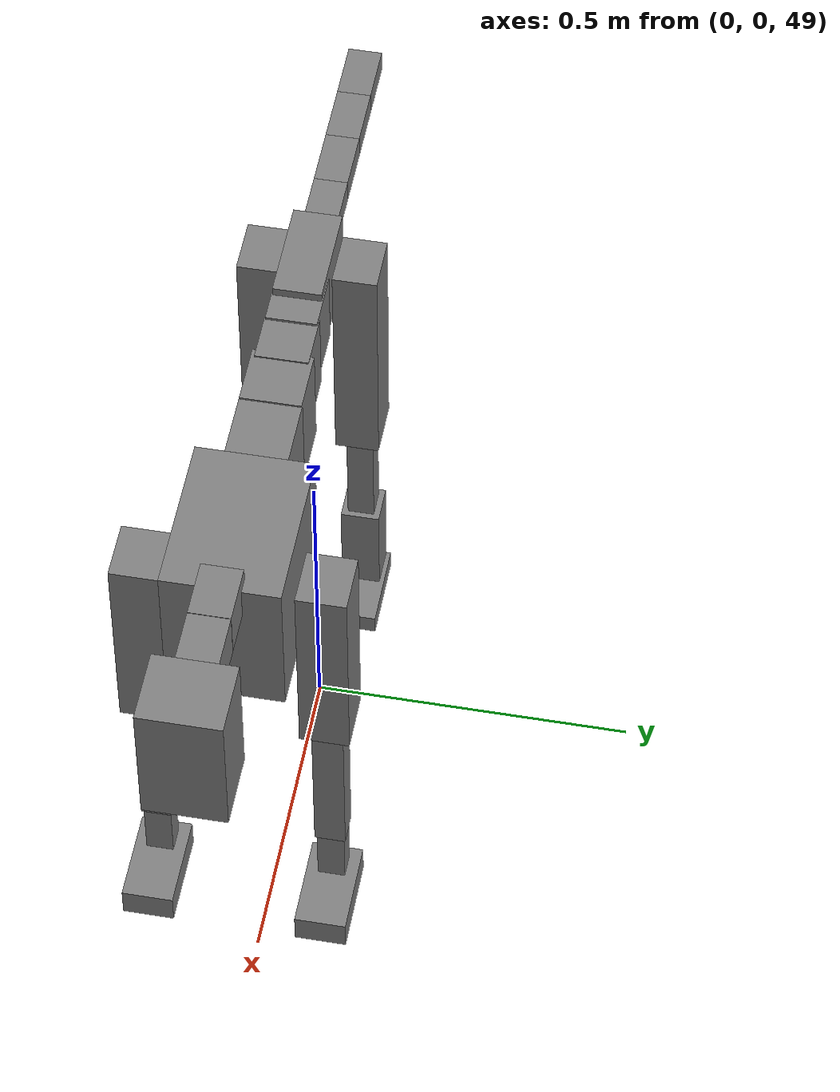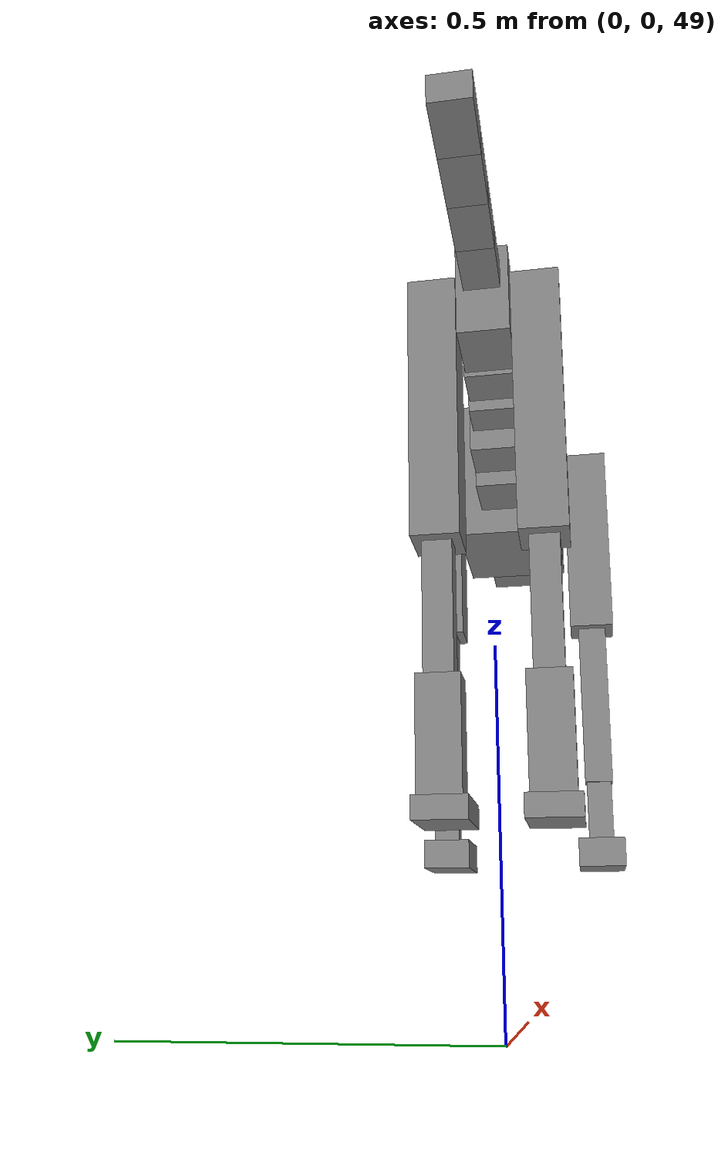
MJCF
<mujoco model="dog">

    <default>
        <joint armature="0.02" stiffness="1" damping="0.2" limited="true"/>
        <geom condim="3" friction="1 0.05 0.05" margin="0.01"/>
        <motor ctrllimited="true" ctrlrange="-1.0 1.0" forcelimited="true" gear="50"/>
    </default>

    <compiler inertiafromgeom="true" angle="radian"/>

    <option timestep="0.016" iterations="50" tolerance="1e-10" solver="Newton" jacobian="dense" cone="pyramidal"/>

    <size nconmax="20000" njmax="60000" nstack="5000000"/>
    <visual>
        <map force="0.1" zfar="30"/>
        <rgba haze="0.15 0.25 0.35 1"/>
        <quality shadowsize="2048"/>
        <global offwidth="800" offheight="800"/>
    </visual>

    <asset>
        <texture type="skybox" builtin="gradient" rgb1="0.3 0.5 0.7" rgb2="0 0 0" width="512" height="512"/>
        <texture name="texplane" type="2d" builtin="checker" rgb1=".2 .3 .4" rgb2=".1 0.15 0.2" width="512" height="512"
                 mark="cross" markrgb=".8 .8 .8"/>
        <texture name="texgeom" type="cube" builtin="flat" mark="cross" width="127" height="1278" rgb1="0.8 0.6 0.4"
                 rgb2="0.8 0.6 0.4" markrgb="1 1 1" random="0.01"/>

        <material name="matplane" reflectance="0.3" texture="texplane" texrepeat="1 1" texuniform="true"/>
        <material name="matgeom" texture="texgeom" texuniform="true" rgba="0.8 0.6 .4 1"/>
    </asset>

    <worldbody>
        <geom name="floor" pos="0 0 0" size="0 0 .25" type="plane" material="matplane" condim="3"/>

        <light directional="false" diffuse=".2 .2 .2" specular="0 0 0" pos="0 0 5" dir="0 0 -1" castshadow="false"/>
        <light mode="targetbodycom" target="torso" directional="false" diffuse=".8 .8 .8" specular="0.3 0.3 0.3"
               pos="0 0 4.0" dir="0 0 -1"/>

        <body name="root" pos="0 0 50">
            <freejoint name="root_1"/>
            <geom type="box" pos="0 0 -0.02" size="0.0774  0.0358  0.063" density="2030"/>

            <body name="spine1" pos="0.054 0 0">
                <joint name="spine1_y" axis="0 1 0" range="0 0.7" limited="true"/>
                <geom type="box" pos="0.02375 0 -0.03" size="0.04375  0.0375  0.05985" density="2030"/>

                <body name="spine2" pos="0.0612 0 0">
                    <joint name="spine2_y" axis="0 1 0" range="-0.15 0.15" limited="true"/>
                    <geom type="box" pos="0.03555  0  -0.04" size="0.04055  0.039  0.06615" density="2030"/>

                    <body name="spine3" pos="0.0730 0 0">
                        <joint name="spine3_y" axis="0 1 0" range="-0.15 0.15" limited="true"/>
                        <geom type="box" pos="0.03555  0  -0.057" size="0.04555  0.0445  0.081" density="2030"/>

                        <body name="spine4" pos="0.0780 0 0">
                            <joint name="spine4_y" axis="0 1 0" range="-0.15 0.15" limited="true"/>
                            <geom type="box" pos="0.05265  0  -0.07" size="0.05265  0.045  0.09135" density="2030"/>

                            <body name="torso" pos="0.1082 0 0">
                                <joint name="torso_y" axis="0 1 0" range="-0.15 0.15" limited="true"/>
                                <geom type="box" pos="0.11925  0  -0.085" size="0.11925  0.085  0.11745"
                                      density="2030"/>

                                <body name="neck1" pos="0.2160  0   0.0180">
                                    <joint name="neck1_y" axis="0 1 0" range="-1.2  -1" limited="true"/>
                                    <geom type="box" pos="0.0423  0  0" size="0.0423  0.03  0.036" density="2325"/>

                                    <body name="neck2" pos="0.0853  0  0">
                                        <joint name="neck2_y" axis="0 1 0" range="0.1  0" limited="true"/>
                                        <geom type="box" pos="0.0423  0  0" size="0.0423  0.03  0.036" density="2325"/>

                                        <body name="head" pos="0.0853  0  0">
                                            <joint name="head_y" axis="0 1 0" range="-0.3  -0.2" limited="true"/>
                                            <geom type="box" pos="0.0531  0  -0.055" size="0.0531  0.06  0.1044"
                                                  density="4030"/>

                                        </body>
                                    </body>
                                </body>

                                <body name="front_shoulder" pos="0.156  0   -0.0480">
                                    <joint name="front_shoulder_y" axis="0 1 0" range="-1 1.5" limited="true"/>
                                    <geom type="box" pos="0 0.13 -0.1332" size="0.0423  0.0361  0.1599" density="1158"/>
                                    <geom type="box" pos="0 -0.13 -0.1332" size="0.0423  0.0361  0.1599"
                                          density="1158"/>

                                    <body name="front_elbow" pos="0  0  -0.2664">
                                        <joint name="front_elbow_y" axis="0 1 0" range="-2 0" limited="true"/>
                                        <geom type="box" pos="0 0.13 -0.1480" size="0.0223  0.0228  0.1480"
                                              density="1081"/>
                                        <geom type="box" pos="0 -0.13 -0.1480" size="0.0223  0.0228  0.1480"
                                              density="1081"/>

                                        <body name="front_wrist" pos="0  0  -0.2961">
                                            <joint name="front_wrist_y" axis="0 1 0" range="-0.2 0" limited="true"/>
                                            <geom type="box" pos="0 0.13 -0.0547" size="0.0183  0.0203  0.0678"
                                                  density="1664"/>
                                            <geom type="box" pos="0 -0.13 -0.0547" size="0.0183  0.0203  0.0678"
                                                  density="1664"/>

                                            <body name="front_finger_end" pos="0  0  -0.1093">
                                                <joint name="front_finger_y" axis="0 1 0" range="-0.4 1"
                                                       limited="true"/>
                                                <geom type="box" pos="0.0381  0.13  -0.0085"
                                                      size="0.0699  0.0381  0.0235" density="1515"/>
                                                <geom type="box" pos="0.0381  -0.13  -0.0085"
                                                      size="0.0699  0.0381  0.0235" density="1515"/>

                                            </body>

                                        </body>
                                    </body>
                                </body>

                            </body>
                        </body>
                    </body>
                </body>
            </body>

            <body name="back_hip" pos="-0.03 0 -0.018">
                <joint name="back_hip_y" axis="0 1 0" range="-1.5 0.3" limited="true"/>
                <geom type="box" pos="0 0.07 -0.1624" size="0.0419  0.0328  0.1852" density="1154"/>
                <geom type="box" pos="0 -0.07 -0.1624" size="0.0419  0.0328  0.1852" density="1154"/>

                <body name="back_knee" pos="0  0  -0.3247">
                    <joint name="back_knee_y" axis="0 1 0" range="0 2.8" limited="true"/>
                    <geom type="box" pos="0 0.07 -0.1074" size="0.0204  0.0201  0.1230" density="1227"/>
                    <geom type="box" pos="0 -0.07 -0.1074" size="0.0204  0.0201  0.1230" density="1227"/>

                    <body name="back_ankle" pos="0  0  -0.2148">
                        <joint name="back_ankle_y" axis="0 1 0" range="-2.2 0" limited="true"/>
                        <geom type="box" pos="0 0.07 -0.0791" size="0.0294  0.0294  0.0904" density="1284"/>
                        <geom type="box" pos="0 -0.07 -0.0791" size="0.0294  0.0294  0.0904" density="1284"/>

                        <body name="back_toe_end" pos="0  0  -0.1583">
                            <joint name="back_toe_y" axis="0 1 0" range="-0.4 1" limited="true"/>
                            <geom type="box" pos="0.0363  0.07  -0.0006" size="0.0665  0.0363  0.0156" density="1515"/>
                            <geom type="box" pos="0.0363  -0.07  -0.0006" size="0.0665  0.0363  0.0156" density="1515"/>

                        </body>
                    </body>
                </body>
            </body>

            <body name="tail1" pos="-0.074 0 -0.006">
                <joint name="tail1_y" axis="0 1 0" range="-0.2 0.2" limited="true"/>
                <geom type="box" pos="-0.0536  0  0" size="0.045  0.025  0.0175" density="1587"/>

                <body name="tail2" pos="-0.09 0 0">
                    <joint name="tail2_y" axis="0 1 0" range="-0.2 0.2" limited="true"/>
                    <geom type="box" pos="-0.0536  0  0" size="0.045  0.025  0.0175" density="1587"/>

                    <body name="tail3" pos="-0.09 0 0">
                        <joint name="tail3_y" axis="0 1 0" range="-0.2 0.2" limited="true"/>
                        <geom type="box" pos="-0.0536  0  0" size="0.045  0.025  0.0175" density="1587"/>

                        <body name="tail4" pos="-0.09 0 0">
                            <joint name="tail4_y" axis="0 1 0" range="-0.2 0.2" limited="true"/>
                            <geom type="box" pos="-0.0536  0  0" size="0.045  0.025  0.0175" density="1587"/>

                        </body>
                    </body>
                </body>
            </body>
        </body>
    </worldbody>

    <actuator>
        <motor joint="spine1_y" forcerange="-150 150     "/>
        <motor joint="spine2_y" forcerange="-150 150     "/>
        <motor joint="spine3_y" forcerange="-150 150     "/>
        <motor joint="spine4_y" forcerange="-150 150     "/>
        <motor joint="torso_y" forcerange="-150 150     "/>
        <motor joint="neck1_y" forcerange="-100 100       "/>
        <motor joint="neck2_y" forcerange="-100 100       "/>
        <motor joint="head_y" forcerange="-150 150       "/>
        <motor joint="front_shoulder_y" forcerange="-178.72 162.18"/>
        <motor joint="front_elbow_y" forcerange="-139.63 126.31"/>
        <motor joint="front_wrist_y" forcerange="-83.16 79.29"/>
        <motor joint="front_finger_y" forcerange="-68.68 94.78"/>
        <motor joint="back_hip_y" forcerange="-317.07 320.64"/>
        <motor joint="back_knee_y" forcerange="-283.77 209.22"/>
        <motor joint="back_angle_y" forcerange="-233.57 136.54"/>
        <motor joint="back_toe_y" forcerange="-116.71 93.50"/>
        <motor joint="tail1_y" forcerange="-50 50     "/>
        <motor joint="tail2_y" forcerange="-50 50     "/>
        <motor joint="tail3_y" forcerange="-50 50     "/>
        <motor joint="tail4_y" forcerange="-50 50     "/>
    </actuator>
</mujoco>
